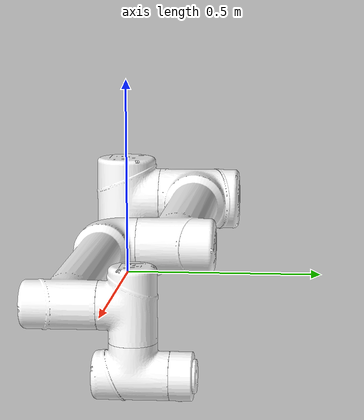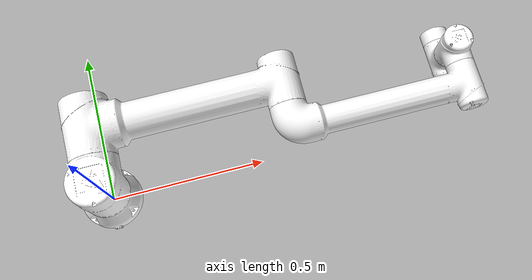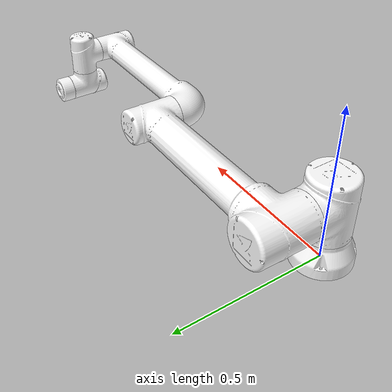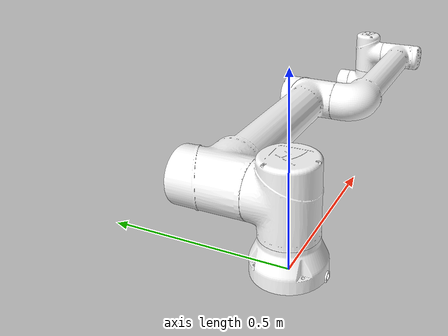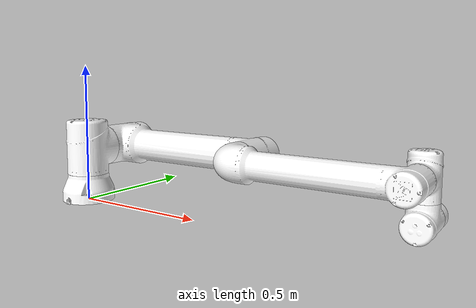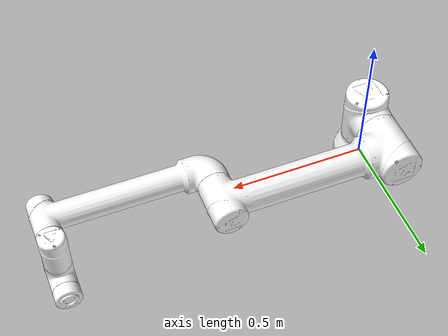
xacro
<?xml version="1.0"?>
<robot xmlns:xacro="http://www.ros.org/wiki/xacro" name="c12a_description">

    <!-- Used for fixing robot to Gazebo 'base_link' -->
    <link name="world"/>
    <joint name="fixed" type="fixed">
        <parent link="world"/>
        <child link="base_link"/>
    </joint>

    <!-- Import c12a_description urdf file -->
    <xacro:include filename="$(find gbt_description)/urdf/GBT_C12A_gazebo.urdf" />

    <!-- Set Gazebo properties for certain link -->
    <gazebo reference="base_link">
        <self_collide>false</self_collide>
        <gravity>false</gravity>
    </gazebo>
    <gazebo reference="link1">
        <self_collide>false</self_collide>
        <gravity>false</gravity>
    </gazebo>
    <gazebo reference="link2">
        <gravity>false</gravity>
    </gazebo>
    <gazebo reference="link3">
        <gravity>false</gravity>
    </gazebo>
    <gazebo reference="link4">
        <gravity>false</gravity>
    </gazebo>
    <gazebo reference="link5">
        <gravity>false</gravity>
    </gazebo>
    <gazebo reference="link6">
        <gravity>false</gravity>
    </gazebo>

    <gazebo>
        <is_static>true</is_static>
        <self_collide>true</self_collide>
    </gazebo>

    <!-- ros2_control -->
    <ros2_control name="GazeboSystem" type="system">
        <hardware>
            <plugin>gazebo_ros2_control/GazeboSystem</plugin>
        </hardware>
        <joint name="joint1">
            <command_interface name="position"/>
            <state_interface name="position">
                <param name="initial_value">0</param>
            </state_interface>
            <state_interface name="velocity"/>
        </joint>
        <joint name="joint2">
            <command_interface name="position"/>
            <state_interface name="position">
                <param name="initial_value">0</param>
            </state_interface>
            <state_interface name="velocity"/>
        </joint>
        <joint name="joint3">
            <command_interface name="position"/>
            <state_interface name="position">
                <param name="initial_value">0</param>
            </state_interface>
            <state_interface name="velocity"/>
        </joint>
        <joint name="joint4">
            <command_interface name="position"/>
            <state_interface name="position">
                <param name="initial_value">0</param>
            </state_interface>
            <state_interface name="velocity"/>
        </joint>
        <joint name="joint5">
            <command_interface name="position"/>
            <state_interface name="position">
                <param name="initial_value">0</param>
            </state_interface>
            <state_interface name="velocity"/>
        </joint>
        <joint name="joint6">
            <command_interface name="position"/>
            <state_interface name="position">
                <param name="initial_value">0</param>
            </state_interface>
            <state_interface name="velocity"/>
        </joint>
    </ros2_control>

    <!-- load ros2_control plugin -->
    <!-- If you don’t need to use MoveIt, comment it out -->
    <gazebo>
        <plugin filename="libgazebo_ros2_control.so" name="gazebo_ros2_control">
            <parameters>$(find c12a_moveit_config)/config/ros2_controllers.yaml</parameters>
            <robot_param>robot_description</robot_param>
            <robot_param_node>robot_state_publisher</robot_param_node>
        </plugin>
    </gazebo>

</robot>

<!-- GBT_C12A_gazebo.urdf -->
<robot
  name="GBT_C12A">
  <link
    name="base_link">
    <inertial>
      <origin
        xyz="1.333E-06 -0.0061641 0.051682"
        rpy="0 0 0" />
      <mass
        value="13.842" />
      <inertia
        ixx="0.040221"
        ixy="1.3302E-05"
        ixz="-7.5729E-07"
        iyy="0.032081"
        iyz="0.00058993"
        izz="0.059352" />
    </inertial>
    <visual>
      <origin
        xyz="0 0 0"
        rpy="0 0 0" />
      <geometry>
        <mesh
          filename="file://$(find gbt_description)/meshes/visual/c12a/c12a_base.dae" />
      </geometry>
      <material
        name="">
        <color
          rgba="1 1 1 1" />
      </material>
    </visual>
    <collision>
      <origin
        xyz="0 0 0"
        rpy="0 0 0" />
      <geometry>
        <mesh
          filename="file://$(find gbt_description)/meshes/collision/c12a/c12a_base.STL" />
      </geometry>
    </collision>
  </link>
  <link
    name="link1">
    <inertial>
      <origin
        xyz="-4.7127E-05 0.0057889 0.10293"
        rpy="0 0 0" />
      <mass
        value="31.15" />
      <inertia
        ixx="0.15484"
        ixy="5.7629E-05"
        ixz="1.0175E-07"
        iyy="0.14949"
        iyz="0.00012177"
        izz="0.097986" />
    </inertial>
    <visual>
      <origin
        xyz="0 0 0"
        rpy="0 0 0" />
      <geometry>
        <mesh
          filename="file://$(find gbt_description)/meshes/visual/c12a/c12a_1.dae" />
      </geometry>
      <material
        name="">
        <color
          rgba="1 1 1 1" />
      </material>
    </visual>
    <collision>
      <origin
        xyz="0 0 0"
        rpy="0 0 0" />
      <geometry>
        <mesh
          filename="file://$(find gbt_description)/meshes/collision/c12a/c12a_1.STL" />
      </geometry>
    </collision>
  </link>
  <joint
    name="joint1"
    type="revolute">
    <origin
      xyz="0 0 0.094"
      rpy="0 0 0" />
    <parent
      link="base_link" />
    <child
      link="link1" />
    <axis
      xyz="0 0 1" />
    <limit
      lower="-6.283185307179"
      upper="6.283185307179"
      effort="100"
      velocity="1" />
  </joint>
  <link
    name="link2">
    <inertial>
      <origin
        xyz="0.25627 1.1532E-05 0.10281"
        rpy="0 0 0" />
      <mass
        value="88.756" />
      <inertia
        ixx="0.27835"
        ixy="0.00048229"
        ixz="-0.0077364"
        iyy="5.0986"
        iyz="3.0613E-05"
        izz="5.0184" />
    </inertial>
    <visual>
      <origin
        xyz="0 0 0"
        rpy="0 0 0" />
      <geometry>
        <mesh
          filename="file://$(find gbt_description)/meshes/visual/c12a/c12a_2.dae" />
      </geometry>
      <material
        name="">
        <color
          rgba="1 1 1 1" />
      </material>
    </visual>
    <collision>
      <origin
        xyz="0 0 0"
        rpy="0 0 0 "  />
      <geometry>
        <mesh
          filename="file://$(find gbt_description)/meshes/collision/c12a/c12a_2.STL" />
      </geometry>
    </collision>
  </link>
  <joint
    name="joint2"
    type="revolute">
    <origin
      xyz="0 0.082 0.102"
      rpy="-1.5708 0 0" />
    <parent
      link="link1" />
    <child
      link="link2" />
    <axis
      xyz="0 0 -1" />
    <limit
      lower="-1.483529864195"
      upper="4.625122517784"
      effort="100"
      velocity="1" />
  </joint>
  <link
    name="link3">
    <inertial>
      <origin
        xyz="-0.27117 3.4432E-06 0.061195"
        rpy="0 0 0" />
      <mass
        value="40.597" />
      <inertia
        ixx="0.060991"
        ixy="2.6089E-05"
        ixz="0.031846"
        iyy="1.7475"
        iyz="-3.0307E-06"
        izz="1.7363" />
    </inertial>
    <visual>
      <origin
        xyz="0 0 0"
        rpy="0 0 0" />
      <geometry>
        <mesh
          filename="file://$(find gbt_description)/meshes/visual/c12a/c12a_3.dae" />
      </geometry>
      <material
        name="">
        <color
          rgba="1 1 1 1" />
      </material>
    </visual>
    <collision>
      <origin
        xyz="0 0 0"
        rpy="0 0 0" />
      <geometry>
        <mesh
          filename="file://$(find gbt_description)/meshes/collision/c12a/c12a_3.STL" />
      </geometry>
    </collision>
  </link>
  <joint
    name="joint3"
    type="revolute">
    <origin
      xyz="0.6125 0 0.018"
      rpy="-3.1416 0 3.1416" />
    <parent
      link="link2" />
    <child
      link="link3" />
    <axis
      xyz="0 0 1" />
    <limit
      lower="-2.87979326579"
      upper="2.87979326579"
      effort="100"
      velocity="1" />
  </joint>
  <link
    name="link4">
    <inertial>
      <origin
        xyz="6.5018E-06 2.845E-05 0.051524"
        rpy="0 0 0" />
      <mass
        value="8.3137" />
      <inertia
        ixx="0.019136"
        ixy="1.5554E-07"
        ixz="3.1721E-07"
        iyy="0.010018"
        iyz="-1.1155E-05"
        izz="0.017943" />
    </inertial>
    <visual>
      <origin
        xyz="0 0 0"
        rpy="0 0 0" />
      <geometry>
        <mesh
          filename="file://$(find gbt_description)/meshes/visual/c12a/c12a_4.dae" />
      </geometry>
      <material
        name="">
        <color
          rgba="1 1 1 1" />
      </material>
    </visual>
    <collision>
      <origin
        xyz="0 0 0"
        rpy="0 0 0"/>
      <geometry>
        <mesh
          filename="file://$(find gbt_description)/meshes/collision/c12a/c12a_4.STL" />
      </geometry>
    </collision>
  </link>
  <joint
    name="joint4"
    type="revolute">
    <origin
      xyz="-0.5605 0 -0.0098"
      rpy="-3.1416 0 3.1416" />
    <parent
      link="link3" />
    <child
      link="link4" />
    <axis
      xyz="0 0 -1" />
    <limit
      lower="-1.483529864195"
      upper="4.625122517784"
      effort="100"
      velocity="1" />
  </joint>
  <link
    name="link5">
    <inertial>
      <origin
        xyz="-6.925E-06 -3.1254E-06 -0.051525"
        rpy="0 0 0" />
      <mass
        value="8.316" />
      <inertia
        ixx="0.019157"
        ixy="-2.8321E-07"
        ixz="4.2716E-07"
        iyy="0.010013"
        iyz="9.0766E-06"
        izz="0.017964" />
    </inertial>
    <visual>
      <origin
        xyz="0 0 0"
        rpy="1.5707963268 0 0" />
      <geometry>
        <mesh
          filename="file://$(find gbt_description)/meshes/visual/c12a/c12a_5.dae" />
      </geometry>
      <material
        name="">
        <color
          rgba="1 1 1 1" />
      </material>
    </visual>
    <collision>
      <origin
        xyz="0 0 0"
        rpy="1.5707963268 0 0" />
      <geometry>
        <mesh
          filename="file://$(find gbt_description)/meshes/collision/c12a/c12a_5.STL" />
      </geometry>
    </collision>
  </link>
  <joint
    name="joint5"
    type="revolute">
    <origin
      xyz="0 0.0738 0.057"
      rpy="1.5708 0 0" />
    <parent
      link="link4" />
    <child
      link="link5" />
    <axis
      xyz="0 0 -1" />
    <limit
      lower="-6.283185307179"
      upper="6.283185307179"
      effort="100"
      velocity="1" />
  </joint>
  <link
    name="link6">
    <inertial>
      <origin
        xyz="1.446E-08 0.00013423 0.018933"
        rpy="0 0 0" />
      <mass
        value="1.9242" />
      <inertia
        ixx="0.0012043"
        ixy="1.9574E-09"
        ixz="1.7738E-09"
        iyy="0.0012178"
        iyz="1.1555E-06"
        izz="0.0019174" />
    </inertial>
    <visual>
      <origin
        xyz="0 0 0"
        rpy="0 1.5707963268 0" />
      <geometry>
        <mesh
          filename="file://$(find gbt_description)/meshes/visual/c12a/c12a_6.dae" />
      </geometry>
      <material
        name="">
        <color
          rgba="1 1 1 1" />
      </material>
    </visual>
    <collision>
      <origin
        xyz="0 0 0"
        rpy="0 1.5707963268 0" />
      <geometry>
        <mesh
          filename="file://$(find gbt_description)/meshes/collision/c12a/c12a_6.STL" />
      </geometry>
    </collision>
  </link>
  <joint
    name="joint6"
    type="revolute">
    <origin
      xyz="0 0.0738 -0.057"
      rpy="-1.5708 0 0" />
    <parent
      link="link5" />
    <child
      link="link6" />
    <axis
      xyz="0 0 1" />
    <limit
      lower="-6.283185307179"
      upper="6.283185307179"
      effort="100"
      velocity="1" />
  </joint>
</robot>
